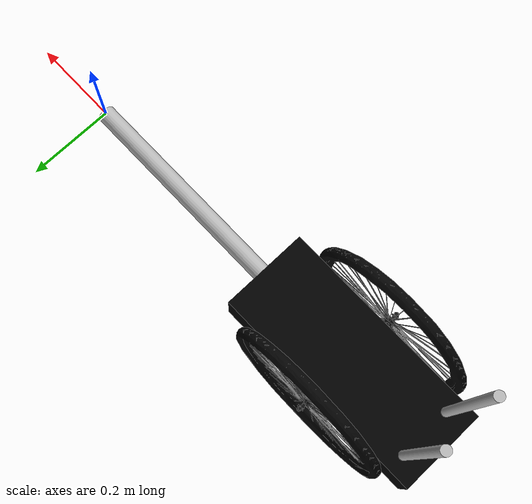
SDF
<?xml version='1.0' encoding='utf-8'?>
<sdf version="1.6">
  <model name="ctu_cras_norlab_trailer_sensor_config_1">
    <link name="base_link">
      <inertial>
        <mass>0.1</mass>
        <inertia>
          <ixx>1.66667e-08</ixx>
          <ixy>0</ixy>
          <ixz>0</ixz>
          <iyy>1.66667e-08</iyy>
          <iyz>0</iyz>
          <izz>1.66667e-08</izz>
        </inertia>
      </inertial>
    </link>
    <link name="intermediate">
      <pose>0 0 0 0 0 -3.1415926535897931</pose>
      <inertial>
        <mass>0.1</mass>
        <inertia>
          <ixx>1.66667e-08</ixx>
          <ixy>0</ixy>
          <ixz>0</ixz>
          <iyy>1.66667e-08</iyy>
          <iyz>0</iyz>
          <izz>1.66667e-08</izz>
        </inertia>
      </inertial>
    </link>
    <joint name="marsup_z_j" type="revolute">
      <child>intermediate</child>
      <parent>base_link</parent>
      <axis>
        <xyz>0 0 1</xyz>
        <limit>
          <lower>-1.5708</lower>
          <upper>1.5708</upper>
          <effort>10000</effort>
          <velocity>2</velocity>
        </limit>
        <dynamics>
          <spring_reference>0</spring_reference>
          <spring_stiffness>0</spring_stiffness>
        </dynamics>
        <use_parent_model_frame>0</use_parent_model_frame>
      </axis>
    </joint>
    <link name="dragging_rod">
      <pose>0 0 0 0 0 -3.1415926535897931</pose>
      <inertial>
        <pose>0.25 0 0 0 1.5707963267948966 0</pose>
        <mass>0.5</mass>
        <inertia>
          <ixx>0.0104667</ixx>
          <ixy>0</ixy>
          <ixz>0</ixz>
          <iyy>0.0104667</iyy>
          <iyz>0</iyz>
          <izz>0.0001</izz>
        </inertia>
      </inertial>
      <collision name="dragging_rod_collision">
        <pose>0.25 0 0 0 1.5707963267948966 0</pose>
        <geometry>
          <cylinder>
            <length>0.5</length>
            <radius>0.02</radius>
          </cylinder>
        </geometry>
      </collision>
      <visual name="dragging_rod_visual">
        <pose>0.25 0 0 0 1.5707963267948966 0</pose>
        <geometry>
          <cylinder>
            <length>0.5</length>
            <radius>0.02</radius>
          </cylinder>
        </geometry>
      </visual>
    </link>
    <joint name="marsup_y_j" type="revolute">
      <child>dragging_rod</child>
      <parent>intermediate</parent>
      <axis>
        <xyz>0 1 0</xyz>
        <limit>
          <lower>-0.785398</lower>
          <upper>0.785398</upper>
          <effort>10000</effort>
          <velocity>2</velocity>
        </limit>
        <dynamics>
          <spring_reference>0</spring_reference>
          <spring_stiffness>0</spring_stiffness>
        </dynamics>
        <use_parent_model_frame>0</use_parent_model_frame>
      </axis>
    </joint>
    <link name="chassis">
      <pose>-0.75 -0 0 0 0 -3.1415926535897931</pose>
      <inertial>
        <mass>2</mass>
        <inertia>
          <ixx>0.00833333</ixx>
          <ixy>0</ixy>
          <ixz>0</ixz>
          <iyy>0.0433333</iyy>
          <iyz>0</iyz>
          <izz>0.0483333</izz>
        </inertia>
      </inertial>
      <collision name="chassis_collision">
        <geometry>
          <box>
            <size>0.5 0.2 0.1</size>
          </box>
        </geometry>
      </collision>
      <collision name="chassis_fixed_joint_lump__antenna_1_collision_1">
        <pose>0.2 0.06 0.2 0 -0 0</pose>
        <geometry>
          <cylinder>
            <length>0.4</length>
            <radius>0.01</radius>
          </cylinder>
        </geometry>
      </collision>
      <collision name="chassis_fixed_joint_lump__antenna_2_collision_2">
        <pose>0.2 -0.06 0.2 0 -0 0</pose>
        <geometry>
          <cylinder>
            <length>0.4</length>
            <radius>0.01</radius>
          </cylinder>
        </geometry>
      </collision>
      <visual name="chassis_visual">
        <geometry>
          <box>
            <size>0.5 0.2 0.1</size>
          </box>
        </geometry>
        <material>
          <ambient>0 0 0 0</ambient>
          <specular>0 0 0 0</specular>
          <emissive>0 0 0 0</emissive>
        </material>
      </visual>
      <visual name="chassis_fixed_joint_lump__antenna_1_visual_1">
        <pose>0.2 0.06 0.2 0 -0 0</pose>
        <geometry>
          <cylinder>
            <length>0.4</length>
            <radius>0.01</radius>
          </cylinder>
        </geometry>
      </visual>
      <visual name="chassis_fixed_joint_lump__antenna_2_visual_2">
        <pose>0.2 -0.06 0.2 0 -0 0</pose>
        <geometry>
          <cylinder>
            <length>0.4</length>
            <radius>0.01</radius>
          </cylinder>
        </geometry>
      </visual>
    </link>
    <joint name="rod_j" type="fixed">
      <child>chassis</child>
      <parent>dragging_rod</parent>
      <axis>
        <dynamics>
          <spring_reference>0</spring_reference>
          <spring_stiffness>0</spring_stiffness>
        </dynamics>
        <xyz>0 0 1</xyz>
        <use_parent_model_frame>0</use_parent_model_frame>
        <limit>
          <lower>-1e+16</lower>
          <upper>1e+16</upper>
        </limit>
      </axis>
      <physics>
        <ode>
          <limit>
            <cfm>0</cfm>
            <erp>0.2</erp>
          </limit>
        </ode>
      </physics>
    </joint>
    <link name="left_wheel">
      <pose>-0.75 0.12 0 0 0 -3.1415926535897931</pose>
      <inertial>
        <pose>0 0 0 1.5707963267948966 -0 0</pose>
        <mass>1</mass>
        <inertia>
          <ixx>0.010075</ixx>
          <ixy>0</ixy>
          <ixz>0</ixz>
          <iyy>0.010075</iyy>
          <iyz>0</iyz>
          <izz>0.02</izz>
        </inertia>
      </inertial>
      <collision name="left_wheel_collision">
        <pose>0 0 0 1.5707963267948966 -0 0</pose>
        <geometry>
          <cylinder>
            <length>0.03</length>
            <radius>0.2</radius>
          </cylinder>
        </geometry>
      </collision>
      <visual name="left_wheel_visual">
        <geometry>
          <mesh>
            <uri>meshes/wheel.dae</uri>
          </mesh>
        </geometry>
      </visual>
    </link>
    <joint name="left_wheel_j" type="revolute">
      <child>left_wheel</child>
      <parent>chassis</parent>
      <axis>
        <xyz>0 1 0</xyz>
        <limit>
          <lower>-1e+16</lower>
          <upper>1e+16</upper>
        </limit>
        <dynamics>
          <spring_reference>0</spring_reference>
          <spring_stiffness>0</spring_stiffness>
        </dynamics>
        <use_parent_model_frame>0</use_parent_model_frame>
      </axis>
    </joint>
    <link name="right_wheel">
      <pose>-0.75 -0.12 0 0 0 -3.1415926535897931</pose>
      <inertial>
        <pose>0 0 0 1.5707963267948966 -0 0</pose>
        <mass>1</mass>
        <inertia>
          <ixx>0.010075</ixx>
          <ixy>0</ixy>
          <ixz>0</ixz>
          <iyy>0.010075</iyy>
          <iyz>0</iyz>
          <izz>0.02</izz>
        </inertia>
      </inertial>
      <collision name="right_wheel_collision">
        <pose>0 0 0 1.5707963267948966 -0 0</pose>
        <geometry>
          <cylinder>
            <length>0.03</length>
            <radius>0.2</radius>
          </cylinder>
        </geometry>
      </collision>
      <visual name="right_wheel_visual">
        <geometry>
          <mesh>
            <uri>meshes/wheel.dae</uri>
          </mesh>
        </geometry>
      </visual>
    </link>
    <joint name="right_wheel_j" type="revolute">
      <child>right_wheel</child>
      <parent>chassis</parent>
      <axis>
        <xyz>0 1 0</xyz>
        <limit>
          <lower>-1e+16</lower>
          <upper>1e+16</upper>
        </limit>
        <dynamics>
          <spring_reference>0</spring_reference>
          <spring_stiffness>0</spring_stiffness>
        </dynamics>
        <use_parent_model_frame>0</use_parent_model_frame>
      </axis>
    </joint>
  </model>
</sdf>
